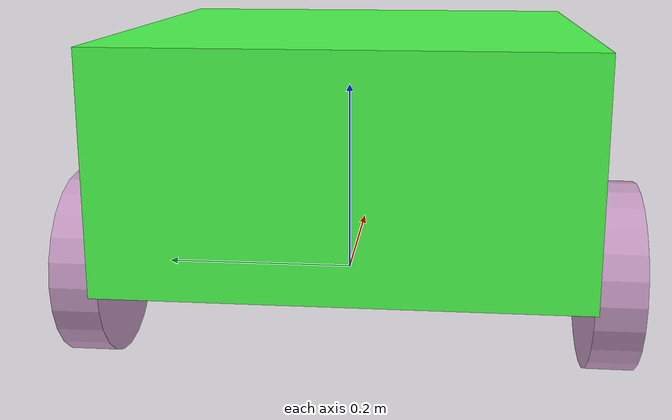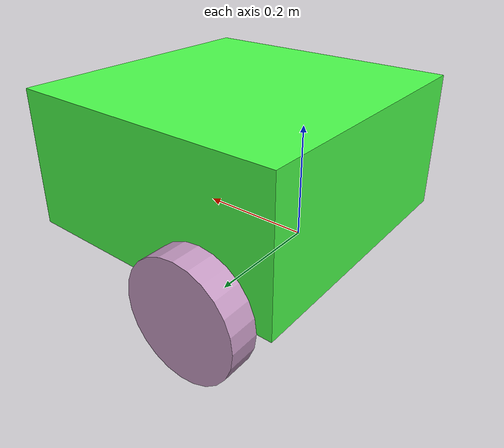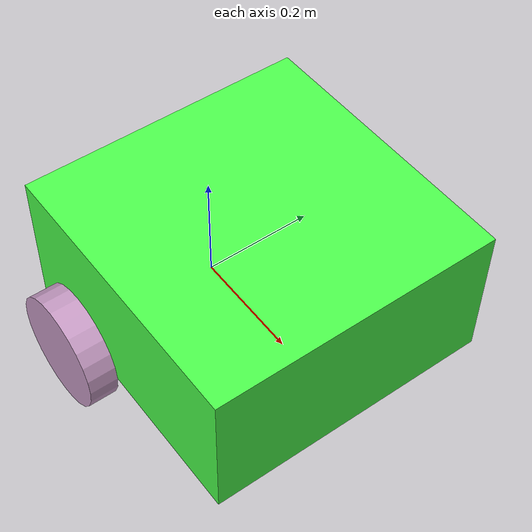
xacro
<?xml version="1.0"?>
<robot xmlns:xacro="http://www.ros.org/wiki/xacro">

    <xacro:include filename="inertia_eqs.xacro"/>

    <material name="white">
        <color rgba="1 1 1 1"/>
    </material>

    <material name="green">
        <color rgba="0.3 1 0.3 1"/>
    </material>

    <material name="grey">
        <color rgba="0.78 0.61 0.77 1"/>
    </material>

    <!--Base Link-->
    <link name="base_link"></link>

    <xacro:property name="width" value="0.5"/>
    <xacro:property name="length" value="0.5"/>
    <xacro:property name="height" value="0.25"/>
    <xacro:property name="wheel_radius" value="0.1"/>
    <xacro:property name="wheel_length" value="0.05"/>

    <!--CHASSIS-->
    <joint name="chassis_joint" type="fixed">
        <parent link="base_link"/>
        <child link="chassis"/>
        <origin xyz="-${length/4} 0.0 0.0"/>
    </joint>

    <link name="chassis">
        <visual>
            <origin xyz="${length/2} 0 ${height/2}"/>
            <geometry>
                <box size="${length} ${width} ${height}"   />
            </geometry>
            <material name="green"/>
        </visual>
        <collision>
            <origin xyz="${length/2} 0 ${height/2}"/>
            <geometry>
                <box size="${length} ${width} ${height}"   />
            </geometry>
            <material name="green"/>
        </collision>
        <xacro:inertial_box mass="1" x="${length}" y="${width}" z="${height}">
            <origin xyz="${length/2} 0 ${height/2}" rpy="0 0 0"/>
        </xacro:inertial_box>
    </link>

    <gazebo reference="chassis">
        <material>Gazebo/Green</material>
    </gazebo>

    <!--LEFT WHEEL-->
    <joint name="left_wheel_joint" type="continuous">
        <parent link="base_link"/>
        <child link="left_wheel"/>
        <origin xyz="0 ${width/2 + wheel_length/2} 0" rpy="-${pi/2} 0 0" />
        <axis xyz="0 0 1"/>
    </joint>

    <link name="left_wheel">
        <visual>
            <geometry>
                <cylinder radius="${wheel_radius}" length="${wheel_length}"/>
            </geometry>
            <material name="grey"/>
        </visual>
        <collision>
            <geometry>
                <cylinder radius="${wheel_radius}" length="${wheel_length}"/>
            </geometry>
        </collision>
        <xacro:inertial_cylinder mass="0.1" length="${wheel_length}" radius="${wheel_radius}">
            <origin xyz="0 0 0" rpy="0 0 0"/>
        </xacro:inertial_cylinder>
    </link>

    <gazebo reference="left_wheel">
        <material>Gazebo/Grey</material>
    </gazebo>

    <!--RIGHT WHEEL-->
    <joint name="right_wheel_joint" type="continuous">
        <parent link="base_link"/>
        <child link="right_wheel"/>
        <origin xyz="0 -${width/2 + wheel_length/2} 0" rpy="-${pi/2} 0 0" />
        <axis xyz="0 0 1"/>
    </joint>

    <link name="right_wheel">
        <visual>
            <geometry>
                <cylinder radius="${wheel_radius}" length="${wheel_length}"/>
            </geometry>
            <material name="grey"/>
        </visual>
        <collision>
            <geometry>
                <cylinder radius="${wheel_radius}" length="${wheel_length}"/>
            </geometry>
        </collision>
        <xacro:inertial_cylinder mass="0.1" length="${wheel_length}" radius="${wheel_radius}">
            <origin xyz="0 0 0" rpy="0 0 0"/>
        </xacro:inertial_cylinder>
    </link>

    <gazebo reference="right_wheel">
        <material>Gazebo/Grey</material>
    </gazebo>

    <!--CASTER-->
    <joint name="caster_wheel_joint" type="fixed">
        <parent link="base_link"/>
        <child link="caster_wheel"/>
        <origin xyz="${length/2} 0 0"/>
    </joint>

    <link name="caster_wheel">
        <visual>
            <geometry>
                <sphere radius="${wheel_radius}"/>
            </geometry>
            <material name="white"/>
        </visual>
        <collision>
            <geometry>
                <sphere radius="${wheel_radius}"/>
            </geometry>
        </collision>
        <xacro:inertial_sphere mass="0.1" radius="${wheel_radius}">
            <origin xyz="0 0 0" rpy="0 0 0"/>
        </xacro:inertial_sphere>
    </link>

    <gazebo reference="caster_wheel">
        <material>Gazebo/White</material>
        <mu1 value="0.001"/>
        <mu2 value="0.001"/>
    </gazebo>

</robot>
